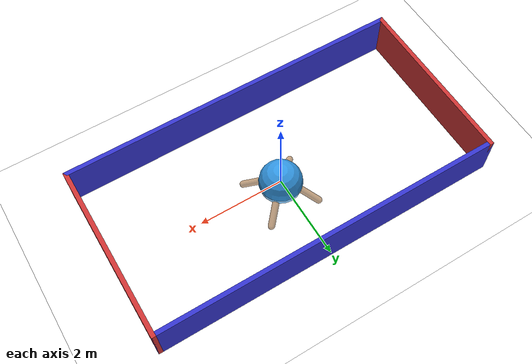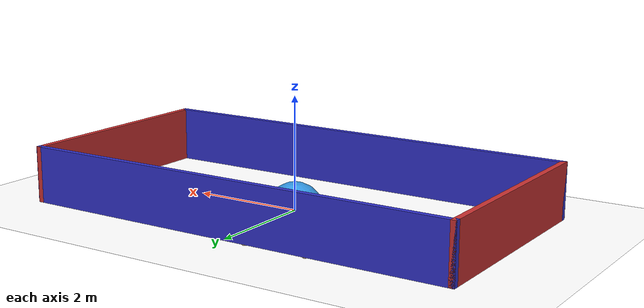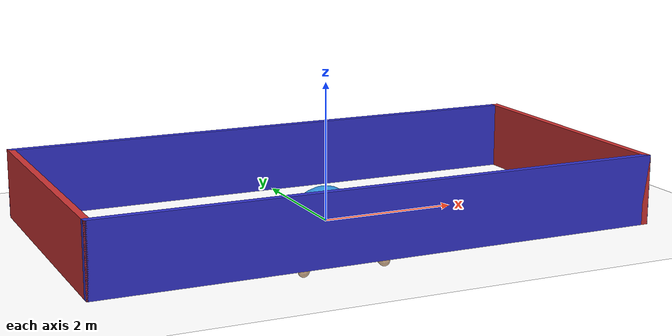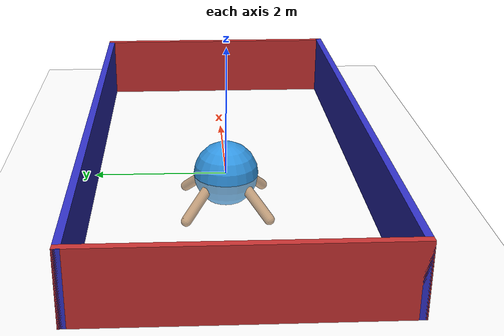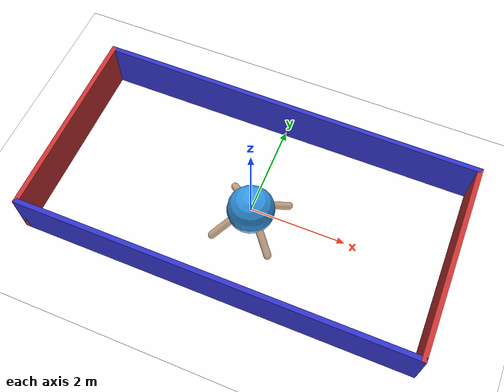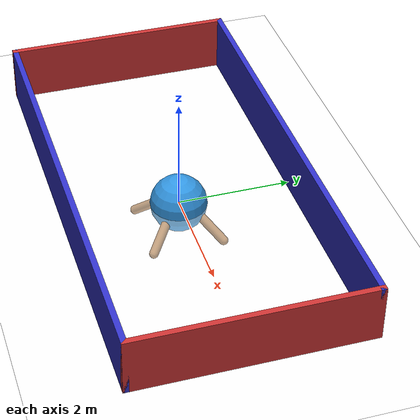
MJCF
<mujoco model="dex-gripper">
  <asset>
    <texture name="skybox" type="skybox" builtin="gradient" rgb1=".2 .3 .4" rgb2="0 0 0" width="800" height="800" mark="random" markrgb="1 1 1"/>
    <texture name="grid" type="2d" builtin="checker" rgb1=".2 .1 .2" rgb2=".3 .2 .3" width="300" height="300" mark="edge" markrgb=".3 .2 .3"/>
    <material name="grid" texture="grid" texrepeat="1 1" texuniform="true" reflectance=".2"/>
    <material name="self" rgba=".7 .5 .3 1"/>
  </asset>
  <visual>
    <headlight ambient=".4 .4 .4" diffuse=".8 .8 .8" specular="0.1 0.1 0.1"/>
    <map znear=".001"/>
    <quality shadowsize="16384"/>
  </visual>
  <compiler angle="degree" coordinate="global" inertiafromgeom="true"/>
  <option integrator="RK4" timestep="0.01"/>
  <default>
    <joint armature="1" damping="1" limited="true"/>
    <geom conaffinity="0" condim="3" density="5.0" friction="1 0.5 0.5" margin="0.01" rgba=".7 .5 .3 1"/>
  </default>
  <worldbody>
    <light cutoff="100" diffuse="1 1 1" dir="0.3 0 -1.3" directional="true" exponent="1" pos="-30 0 130" specular=".1 .1 .1"/>
    <geom conaffinity="1" condim="3" name="floor" pos="0 0 0" rgba="1 1 1 1" size="200 200 .125" type="plane" material="grid"/>
    <body name="0" pos="0 0 0" gravcomp="1">
      <camera name="track" mode="fixed" pos="0 10 5" quat="0 0 0.547 0.892"/>
      <geom name="torso" pos="0 0 0" size="0.25 0.25 0.15" type="ellipsoid"/>
      <joint name="root_x" type="slide" axis="1 0 0"
            pos="0 0 0" limited="false"
            armature="0" damping="0"/>

      <joint name="root_y" type="slide" axis="0 1 0"
            pos="0 0 0" limited="false"
            armature="0" damping="0"/>

      <joint name="root_z" type="slide" axis="0 0 1"
            pos="0 0 0" limited="false"
            armature="0" damping="0"/>
      <body name="1" pos="0 0 0" gravcomp="1">
        <joint axis="-0.6124 0.6124 0" name="1_joint" pos="0.177 0.177 0" range="-30 30" type="hinge" damping="0"/>
        <geom fromto="0.177 0.177 0   0.623 0.623 -0.5" size="0.08" type="capsule"/>
      </body>
      <body name="2" pos="0 0 0" gravcomp="1">
        <joint axis="-0.6124 -0.6124 0" name="2_joint" pos="-0.177 0.177 0" range="-30 30" type="hinge" damping="0"/>
        <geom fromto="-0.177 0.177 0   -0.623 0.623 -0.5" size="0.08" type="capsule"/>
      </body>
      <body name="3" pos="0 0 0" gravcomp="1">
        <joint axis="0.6124 -0.6124 0" name="3_joint" pos="-0.177 -0.177 0" range="-30 30" type="hinge" damping="0"/>
        <geom fromto="-0.177 -0.177 0   -0.623 -0.623 -0.5" size="0.08" type="capsule"/>
      </body>
      <body name="4" pos="0 0 0" gravcomp="1">
        <joint axis="0.6124 0.6124 0" name="4_joint" pos="0.177 -0.177 0" range="-30 30" type="hinge" damping="0"/>
        <geom fromto="0.177 -0.177 0   0.623 -0.623 -0.5" size="0.08" type="capsule"/>
      </body>
    </body>
    <body name="box_1" pos="0 0 0">
      <freejoint name="box_1_joint"/>

      <geom name="box_1"
            type="sphere"
            size="0.5"
            rgba="0.2 0.6 0.9 1.0"
            contype="1"
            conaffinity="1"
            density="10"
            friction="2.5 0.1 0.05"/>
    </body>

    <body name="box_2" pos="1.5 0 0">
      <freejoint name="box_2_joint"/>

      <geom name="box_2"
            type="sphere"
            size="0.5"
            rgba="0.9 0.4 0.2 1.0"
            contype="1"
            conaffinity="1"
            density="10"
            friction="2.5 0.1 0.05"/>
    </body>

    <body name="box_3" pos="-1.5 0 0">
      <freejoint name="box_3_joint"/>

      <geom name="box_3"
            type="sphere"
            size="0.5"
            rgba="0.2 0.9 0.4 1.0"
            contype="1"
            conaffinity="1"
            density="10"
            friction="2.5 0.1 0.05"/>
    </body>
    <body name="box_walls" pos="0 0 0">

      <!-- LEFT WALL (8x distance) -->
      <geom name="wall_left"
            type="box"
            pos="-4.0 0 0.5"
            size="0.05 2.05 0.5"
            rgba="0.8 0.2 0.2 1"
            contype="1" conaffinity="1"/>

      <!-- RIGHT WALL (8x distance) -->
      <geom name="wall_right"
            type="box"
            pos="4.0 0 0.5"
            size="0.05 2.05 0.5"
            rgba="0.8 0.2 0.2 1"
            contype="1" conaffinity="1"/>

      <!-- FRONT WALL (4x distance) -->
      <geom name="wall_front"
            type="box"
            pos="0 2.0 0.5"
            size="4.05 0.05 0.5"
            rgba="0.2 0.2 0.8 1"
            contype="1" conaffinity="1"/>

      <!-- BACK WALL (4x distance) -->
      <geom name="wall_back"
            type="box"
            pos="0 -2.0 0.5"
            size="4.05 0.05 0.5"
            rgba="0.2 0.2 0.8 1"
            contype="1" conaffinity="1"/>

      </body>
  </worldbody>
  <actuator>
    <motor name="root_x_motor" joint="root_x" gear="50" ctrllimited="true" ctrlrange="-1 1"/>
    <motor name="root_y_motor" joint="root_y" gear="50" ctrllimited="true" ctrlrange="-1 1"/>
    <motor name="root_z_motor" joint="root_z" gear="50" ctrllimited="true" ctrlrange="-1 1"/>
    <motor ctrllimited="true" ctrlrange="-1.0 1.0" joint="1_joint" gear="50" name="1_joint"/>
    <motor ctrllimited="true" ctrlrange="-1.0 1.0" joint="2_joint" gear="50" name="2_joint"/>
    <motor ctrllimited="true" ctrlrange="-1.0 1.0" joint="3_joint" gear="50" name="3_joint"/>
    <motor ctrllimited="true" ctrlrange="-1.0 1.0" joint="4_joint" gear="50" name="4_joint"/>
  </actuator>
</mujoco>
